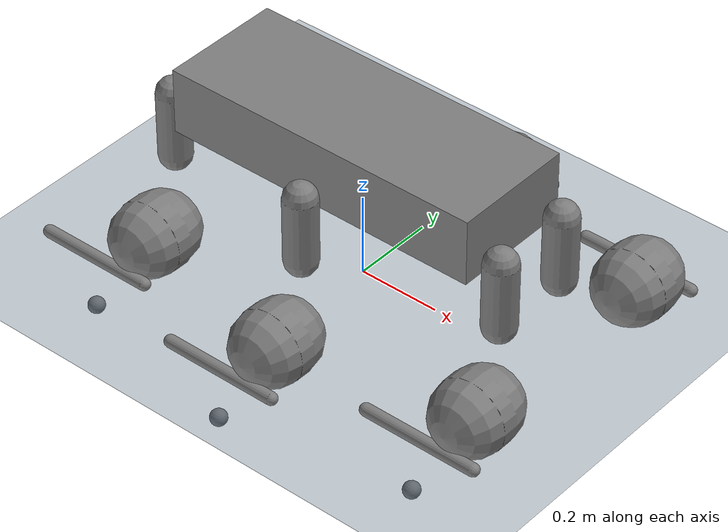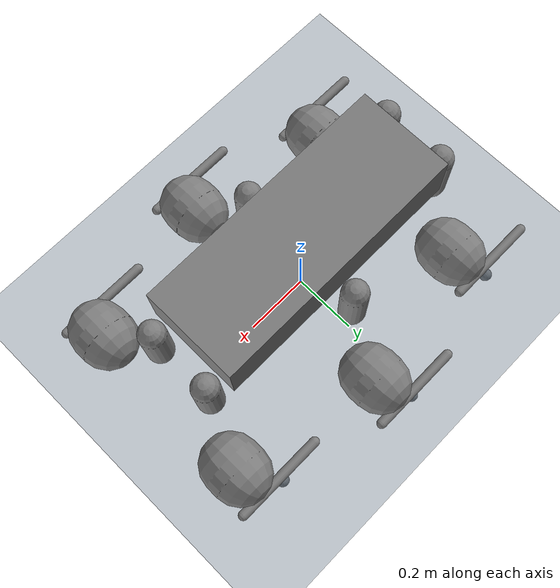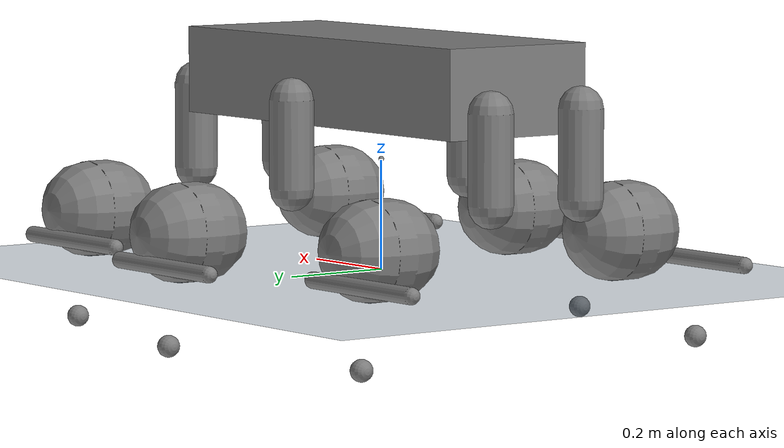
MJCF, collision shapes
<mujoco model="el4090 newhex18dof scene">
  <include file="newhex18dof.xml" />
  <statistic center="0 0 0.15" extent="1.2" />
  <visual>
    <headlight diffuse="0.6 0.6 0.6" ambient="0.3 0.3 0.3" specular="0 0 0" />
    <rgba haze="0.15 0.25 0.35 1" />
    <global azimuth="-130" elevation="-20" />
  </visual>
  <asset>
    <texture type="skybox" builtin="gradient" rgb1="0.3 0.5 0.7" rgb2="0 0 0" width="512" height="3072" />
    <texture type="2d" name="groundplane" builtin="checker" mark="edge" rgb1="0.2 0.3 0.4" rgb2="0.1 0.2 0.3" markrgb="0.8 0.8 0.8" width="300" height="300" />
    <material name="groundplane" texture="groundplane" texuniform="true" texrepeat="5 5" reflectance="0.2" />
  </asset>
  <worldbody>
    <light pos="0 0 1.5" dir="0 0 -1" directional="true" />
    <geom name="floor" size="0 0 0.05" type="plane" material="groundplane" />
  </worldbody>
  <sensor>
    <gyro site="imu" name="gyro" />
    <velocimeter site="imu" name="local_linvel" />
    <framezaxis objtype="site" objname="imu" name="upvector" />
    <framepos objtype="site" objname="imu" name="global_position" />
    <framelinvel objtype="site" objname="imu" name="global_linvel" />
    <framepos objtype="geom" objname="RF_foot" name="RF_pos" />
    <framelinvel objtype="geom" objname="RF_foot" name="RF_vel" />
    <contact name="RF_foot_contact" geom1="floor" geom2="RF_foot" data="force" num="1" reduce="mindist" />
    <framepos objtype="geom" objname="RM_foot" name="RM_pos" />
    <framelinvel objtype="geom" objname="RM_foot" name="RM_vel" />
    <contact name="RM_foot_contact" geom1="floor" geom2="RM_foot" data="force" num="1" reduce="mindist" />
    <framepos objtype="geom" objname="RB_foot" name="RB_pos" />
    <framelinvel objtype="geom" objname="RB_foot" name="RB_vel" />
    <contact name="RB_foot_contact" geom1="floor" geom2="RB_foot" data="force" num="1" reduce="mindist" />
    <framepos objtype="geom" objname="LF_foot" name="LF_pos" />
    <framelinvel objtype="geom" objname="LF_foot" name="LF_vel" />
    <contact name="LF_foot_contact" geom1="floor" geom2="LF_foot" data="force" num="1" reduce="mindist" />
    <framepos objtype="geom" objname="LM_foot" name="LM_pos" />
    <framelinvel objtype="geom" objname="LM_foot" name="LM_vel" />
    <contact name="LM_foot_contact" geom1="floor" geom2="LM_foot" data="force" num="1" reduce="mindist" />
    <framepos objtype="geom" objname="LB_foot" name="LB_pos" />
    <framelinvel objtype="geom" objname="LB_foot" name="LB_vel" />
    <contact name="LB_foot_contact" geom1="floor" geom2="LB_foot" data="force" num="1" reduce="mindist" />
    <contact name="undesired_BASE_0_contact" geom1="floor" geom2="undesired_BASE_0" data="found" num="1" reduce="mindist" />
    <contact name="undesired_RF_hip_0_contact" geom1="floor" geom2="undesired_RF_hip_0" data="found" num="1" reduce="mindist" />
    <contact name="undesired_RF_thigh_0_contact" geom1="floor" geom2="undesired_RF_thigh_0" data="found" num="1" reduce="mindist" />
    <contact name="undesired_RF_shank_0_contact" geom1="floor" geom2="undesired_RF_shank_0" data="found" num="1" reduce="mindist" />
    <contact name="undesired_RM_hip_0_contact" geom1="floor" geom2="undesired_RM_hip_0" data="found" num="1" reduce="mindist" />
    <contact name="undesired_RM_thigh_0_contact" geom1="floor" geom2="undesired_RM_thigh_0" data="found" num="1" reduce="mindist" />
    <contact name="undesired_RM_shank_0_contact" geom1="floor" geom2="undesired_RM_shank_0" data="found" num="1" reduce="mindist" />
    <contact name="undesired_RB_hip_0_contact" geom1="floor" geom2="undesired_RB_hip_0" data="found" num="1" reduce="mindist" />
    <contact name="undesired_RB_thigh_0_contact" geom1="floor" geom2="undesired_RB_thigh_0" data="found" num="1" reduce="mindist" />
    <contact name="undesired_RB_shank_0_contact" geom1="floor" geom2="undesired_RB_shank_0" data="found" num="1" reduce="mindist" />
    <contact name="undesired_LF_hip_0_contact" geom1="floor" geom2="undesired_LF_hip_0" data="found" num="1" reduce="mindist" />
    <contact name="undesired_LF_thigh_0_contact" geom1="floor" geom2="undesired_LF_thigh_0" data="found" num="1" reduce="mindist" />
    <contact name="undesired_LF_shank_0_contact" geom1="floor" geom2="undesired_LF_shank_0" data="found" num="1" reduce="mindist" />
    <contact name="undesired_LM_hip_0_contact" geom1="floor" geom2="undesired_LM_hip_0" data="found" num="1" reduce="mindist" />
    <contact name="undesired_LM_thigh_0_contact" geom1="floor" geom2="undesired_LM_thigh_0" data="found" num="1" reduce="mindist" />
    <contact name="undesired_LM_shank_0_contact" geom1="floor" geom2="undesired_LM_shank_0" data="found" num="1" reduce="mindist" />
    <contact name="undesired_LB_hip_0_contact" geom1="floor" geom2="undesired_LB_hip_0" data="found" num="1" reduce="mindist" />
    <contact name="undesired_LB_thigh_0_contact" geom1="floor" geom2="undesired_LB_thigh_0" data="found" num="1" reduce="mindist" />
    <contact name="undesired_LB_shank_0_contact" geom1="floor" geom2="undesired_LB_shank_0" data="found" num="1" reduce="mindist" />
  </sensor>
  <keyframe>
    <key name="home" qpos="0 0 0.35 1 0 0 0 0 0 0 0 0 0 0 0 0 0 0 0 0 0 0 0 0 0" ctrl="0 0 0 0 0 0 0 0 0 0 0 0 0 0 0 0 0 0" />
  </keyframe>
</mujoco>

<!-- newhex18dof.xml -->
<mujoco model="el4090_newhex18dof">
  <compiler angle="radian" meshdir="meshes" autolimits="true" />
  <option cone="elliptic" impratio="100" />
  <default>
    <default class="el_4090">
      <geom friction="0.6" margin="0.001" condim="1" />
      <joint damping="0.5" armature="0.05" frictionloss="0.5" />
      <position ctrlrange="-80 80" />
      <default class="hip_aa">
        <joint range="-3 3" />
      </default>
      <default class="hip_fe">
        <joint range="-3 3" />
      </default>
      <default class="knee">
        <joint range="-3 3" />
      </default>
      <default class="visual">
        <geom type="mesh" contype="0" conaffinity="0" group="2" />
      </default>
      <default class="collision">
        <geom group="3" />
        <default class="foot">
          <geom size="0.02" priority="1" condim="6" friction="0.6 0.02 0.01" />
        </default>
      </default>
    </default>
  </default>
  <asset>
    <material name="metal" rgba=".9 .95 .95 1" />
    <material name="gray" rgba="0.752941 0.752941 0.752941 1" />
    <material name="blue" rgba="0.501960 0.501960 0.752941 1" />
    <mesh file="BASE.STL" />
    <mesh file="RF_HIP.STL" />
    <mesh file="RF_THIGH.STL" />
    <mesh file="RF_SHANK.STL" />
    <mesh file="RF_FOOT.STL" />
    <mesh file="RM_HIP.STL" />
    <mesh file="RM_THIGH.STL" />
    <mesh file="RM_SHANK.STL" />
    <mesh file="RM_FOOT.STL" />
    <mesh file="RB_HIP.STL" />
    <mesh file="RB_THIGH.STL" />
    <mesh file="RB_SHANK.STL" />
    <mesh file="RB_FOOT.STL" />
    <mesh file="LF_HIP.STL" />
    <mesh file="LF_THIGH.STL" />
    <mesh file="LF_SHANK.STL" />
    <mesh file="LF_FOOT.STL" />
    <mesh file="LM_HIP.STL" />
    <mesh file="LM_THIGH.STL" />
    <mesh file="LM_SHANK.STL" />
    <mesh file="LM_FOOT.STL" />
    <mesh file="LB_HIP.STL" />
    <mesh file="LB_THIGH.STL" />
    <mesh file="LB_SHANK.STL" />
    <mesh file="LB_FOOT.STL" />
  </asset>
  <worldbody>
    <body name="BASE" pos="0 0 0.35" childclass="el_4090">
      <inertial pos="8.76981e-07 0.000115496 -0.147278" mass="7.44160" fullinertia="0.102252 0.550673 0.642667 1.38784e-07 3.46680e-08 8.47302e-06" />
      <freejoint />
      <geom mesh="BASE" material="metal" class="visual" />
      <geom size="0.4 0.15 0.08" type="box" class="collision" name="undesired_BASE_0" />
      <site name="imu" pos="0 0 -0.147278" />
      <body name="RF_hip" pos="0.45 -0.1 -0.1105" quat="0 0.707107 0.707107 0">
        <inertial pos="-0.0284101 -0.00133832 0.104823" mass="1.11610" fullinertia="0.00135962 0.00210959 0.00166449 -3.05912e-05 0.000222421 1.38916e-05" />
        <joint name="RF_HAA" axis="0 0 1" class="hip_aa" />
        <geom mesh="RF_HIP" material="gray" class="visual" />
        <geom size="0.04 0.08" type="capsule" class="collision" name="undesired_RF_hip_0" />
        <body name="RF_thigh" pos="-0.09 0.0795 0.154" quat="0.707107 -0.707107 0 0">
          <inertial pos="-0.0284794 0.0124923 -0.0809892" mass="1.00124" fullinertia="0.00104777 0.00212934 0.00281212 0.000929232 2.63860e-05 -1.15742e-05" />
          <joint name="RF_HFE" axis="0 0 1" class="hip_fe" />
          <geom mesh="RF_THIGH" material="gray" class="visual" />
          <geom size="0.09 0.02" pos="-0.08 0 0" quat="0.707107 0 0.707107 0" type="capsule" class="collision" name="undesired_RF_thigh_0" />
          <body name="RF_shank" pos="-0.1782 0.090798 -0.0685">
            <inertial pos="-0.00122266 -0.107332 -0.0108828" mass="0.577674" fullinertia="0.00449636 6.70983e-05 0.00452067 -5.31534e-05 1.14279e-08 2.41776e-06" />
            <joint name="RF_KFE" axis="0 0 1" class="knee" />
            <geom mesh="RF_SHANK" material="gray" class="visual" />
            <geom size="0.015 0.14" pos="0 -0.14 0" quat="1 0 0 0" type="capsule" class="collision" name="undesired_RF_shank_0" />
            <body name="RF_foot" pos="-0.00818264 -0.299167 -0.0111074">
              <inertial pos="0.00315049 0.0187639 0.000250412" mass="0.0652350" fullinertia="1.21480e-05 1.32090e-05 1.43073e-05 -6.01498e-08 2.79522e-08 -9.55459e-08" />
              <geom mesh="RF_FOOT" material="blue" class="visual" />
              <geom name="RF_foot" class="foot" pos="0 0.02 0" type="sphere" />
            </body>
          </body>
        </body>
      </body>
      <body name="RM_hip" pos="0 -0.2 -0.1105" quat="0 0.707107 0.707107 0">
        <inertial pos="-0.02841 -0.0013382 0.10482" mass="1.1161" fullinertia="0.0013596 0.0021096 0.0016645 -3.06e-05 0.00022242 1.3892e-05" />
        <joint name="RM_HAA" axis="0 0 1" class="hip_aa" />
        <geom mesh="RM_HIP" material="gray" class="visual" />
        <geom size="0.04 0.08" type="capsule" class="collision" name="undesired_RM_hip_0" />
        <body name="RM_thigh" pos="-0.09 0.0795 0.154" quat="0.707107 -0.707107 0 0">
          <inertial pos="-0.028479 0.012492 -0.080989" mass="1.0012" fullinertia="0.0010478 0.0021293 0.0028121 0.00092923 2.6386e-05 -1.1574e-05" />
          <joint name="RM_HFE" axis="0 0 1" class="hip_fe" />
          <geom mesh="RM_THIGH" material="gray" class="visual" />
          <geom size="0.09 0.02" pos="-0.08 0 0" quat="0.707107 0 0.707107 0" type="capsule" class="collision" name="undesired_RM_thigh_0" />
          <body name="RM_shank" pos="-0.1782 0.090798 -0.0685">
            <inertial pos="-0.001255 -0.10733 -0.010883" mass="0.57767" fullinertia="0.0044965 6.7005e-05 0.0045207 -4.9108e-05 -4.438e-08 2.4174e-06" />
            <joint name="RM_KFE" axis="0 0 1" class="knee" />
            <geom mesh="RM_SHANK" material="gray" class="visual" />
            <geom size="0.015 0.14" pos="0 -0.14 0" quat="1 0 0 0" type="capsule" class="collision" name="undesired_RM_shank_0" />
            <body name="RM_foot" pos="0.0012754 -0.29928 -0.011107">
              <inertial pos="0.0027166 0.018832 0.00025041" mass="0.065235" fullinertia="1.2151e-05 1.3206e-05 1.4307e-05 -8.4562e-08 3.0162e-08 -9.4852e-08" />
              <geom mesh="RM_FOOT" material="blue" class="visual" />
              <geom name="RM_foot" class="foot" pos="0 0.02 0" type="sphere" />
            </body>
          </body>
        </body>
      </body>
      <body name="RB_hip" pos="-0.45 -0.1 -0.1108" quat="0 0.707107 0.707107 0">
        <inertial pos="-0.02841 0.0013389 0.10482" mass="1.1161" fullinertia="0.0013596 0.0021096 0.0016645 3.06e-05 0.00022242 1.3892e-05" />
        <joint name="RB_HAA" axis="0 0 1" class="hip_aa" />
        <geom mesh="RB_HIP" material="gray" class="visual" />
        <geom size="0.04 0.08" type="capsule" class="collision" name="undesired_RB_hip_0" />
        <body name="RB_thigh" pos="-0.09 0.0945 0.1537" quat="0.707107 -0.707107 0 0">
          <inertial pos="-0.028479 0.012492 -0.093011" mass="1.0012" fullinertia="0.0010478 0.0021293 0.0028121 0.00092923 -2.6386e-05 1.1574e-05" />
          <joint name="RB_HFE" axis="0 0 1" class="hip_fe" />
          <geom mesh="RB_THIGH" material="gray" class="visual" />
          <geom size="0.09 0.02" pos="-0.08 0 0" quat="0.707107 0 0.707107 0" type="capsule" class="collision" name="undesired_RB_thigh_0" />
          <body name="RB_shank" pos="-0.1782 0.090798 -0.0835">
            <inertial pos="-0.0012227 -0.10733 -0.011117" mass="0.57767" fullinertia="0.0044964 6.7098e-05 0.0045207 -5.3153e-05 1.1428e-08 2.4178e-06" />
            <joint name="RB_KFE" axis="0 0 1" class="knee" />
            <geom mesh="RB_SHANK" material="gray" class="visual" />
            <geom size="0.015 0.14" pos="0 -0.14 0" quat="1 0 0 0" type="capsule" class="collision" name="undesired_RB_shank_0" />
            <body name="RB_foot" pos="0.00127539 -0.29928 -0.010893">
              <inertial pos="-0.0031505 0.018764 -0.00025041" mass="0.065235" fullinertia="1.2148e-05 1.3209e-05 1.4307e-05 6.015e-08 2.7952e-08 9.5546e-08" />
              <geom mesh="RB_FOOT" material="blue" class="visual" />
              <geom name="RB_foot" class="foot" pos="0 0.02 0" type="sphere" />
            </body>
          </body>
        </body>
      </body>
      <body name="LF_hip" pos="0.45 0.099997 -0.1105" quat="0.707107 0 0 -0.707107">
        <inertial pos="-0.02841 -0.0013383 -0.10482" mass="1.1161" fullinertia="0.0013596 0.0021096 0.0016645 -3.0608e-05 -0.00022242 -1.3892e-05" />
        <joint name="LF_HAA" axis="0 0 1" class="hip_aa" />
        <geom mesh="LF_HIP" material="gray" class="visual" />
        <geom size="0.04 0.08" type="capsule" class="collision" name="undesired_LF_hip_0" />
        <body name="LF_thigh" pos="-0.09 0.0795 -0.154" quat="0.707107 0.707107 0 0">
          <inertial pos="-0.028479 0.012492 0.080989" mass="1.0012" fullinertia="0.0010478 0.0021293 0.0028121 0.00092923 -2.6386e-05 1.1574e-05" />
          <joint name="LF_HFE" axis="0 0 1" class="hip_fe" />
          <geom mesh="LF_THIGH" material="gray" class="visual" />
          <geom size="0.09 0.02" pos="-0.08 0 0" quat="0.707107 0 0.707107 0" type="capsule" class="collision" name="undesired_LF_thigh_0" />
          <body name="LF_shank" pos="-0.1782 0.090798 0.0685">
            <inertial pos="-0.001255 -0.10733 0.010883" mass="0.57767" fullinertia="0.0044965 6.7005e-05 0.0045207 -4.9108e-05 -4.438e-08 -2.4174e-06" />
            <joint name="LF_KFE" axis="0 0 1" class="knee" />
            <geom mesh="LF_SHANK" material="gray" class="visual" />
            <geom size="0.015 0.14" pos="0 -0.14 0" quat="1 0 0 0" type="capsule" class="collision" name="undesired_LF_shank_0" />
            <body name="LF_foot" pos="0.00127539 -0.29928 0.011107" quat="0 0 1 0">
              <inertial pos="0.00271657 0.0188316 0.000250423" mass="0.0652350" fullinertia="1.21513e-05 1.32056e-05 1.43073e-05 -8.45643e-08 3.01643e-08 -9.48605e-08" />
              <geom mesh="LF_FOOT" material="blue" class="visual" />
              <geom name="LF_foot" class="foot" pos="0 0.02 0" type="sphere" />
            </body>
          </body>
        </body>
      </body>
      <body name="LM_hip" pos="0 0.2 -0.1105" quat="0.707107 0 0 -0.707107">
        <inertial pos="-0.02841 -0.0013383 -0.10482" mass="1.1161" fullinertia="0.0013596 0.0021096 0.0016645 -3.0609e-05 -0.00022242 -1.3892e-05" />
        <joint name="LM_HAA" axis="0 0 1" class="hip_aa" />
        <geom mesh="LM_HIP" material="gray" class="visual" />
        <geom size="0.04 0.08" type="capsule" class="collision" name="undesired_LM_hip_0" />
        <body name="LM_thigh" pos="-0.09 0.0795 -0.154" quat="0.707107 0.707107 0 0">
          <inertial pos="-0.028479 0.012492 0.080989" mass="1.0012" fullinertia="0.0010478 0.0021293 0.0028121 0.00092923 -2.6386e-05 1.1574e-05" />
          <joint name="LM_HFE" axis="0 0 1" class="hip_fe" />
          <geom mesh="LM_THIGH" material="gray" class="visual" />
          <geom size="0.09 0.02" pos="-0.08 0 0" quat="0.707107 0 0.707107 0" type="capsule" class="collision" name="undesired_LM_thigh_0" />
          <body name="LM_shank" pos="-0.1782 0.090798 0.0685">
            <inertial pos="-0.001255 -0.10733 0.010883" mass="0.57767" fullinertia="0.0044965 6.7005e-05 0.0045207 -4.9108e-05 -4.438e-08 -2.4174e-06" />
            <joint name="LM_KFE" axis="0 0 1" class="knee" />
            <geom mesh="LM_SHANK" material="gray" class="visual" />
            <geom size="0.015 0.14" pos="0 -0.14 0" quat="1 0 0 0" type="capsule" class="collision" name="undesired_LM_shank_0" />
            <body name="LM_foot" pos="0.0012754 -0.29928 0.011107" quat="0 0 1 0">
              <inertial pos="0.0027166 0.018832 0.00025041" mass="0.065235" fullinertia="1.2151e-05 1.3206e-05 1.4307e-05 -8.4562e-08 3.0162e-08 -9.4852e-08" />
              <geom mesh="LM_FOOT" material="blue" class="visual" />
              <geom name="LM_foot" class="foot" pos="0 0.02 0" type="sphere" />
            </body>
          </body>
        </body>
      </body>
      <body name="LB_hip" pos="-0.45 0.099997 -0.1105" quat="0.707107 0 0 -0.707107">
        <inertial pos="-0.02841 0.0013389 -0.10482" mass="1.1161" fullinertia="0.0013596 0.0021096 0.0016645 3.06e-05 -0.00022242 1.3892e-05" />
        <joint name="LB_HAA" axis="0 0 1" class="hip_aa" />
        <geom mesh="LB_HIP" material="gray" class="visual" />
        <geom size="0.04 0.08" type="capsule" class="collision" name="undesired_LB_hip_0" />
        <body name="LB_thigh" pos="-0.09 0.0945 -0.154" quat="0.707107 0.707107 0 0">
          <inertial pos="-0.028479 0.012492 0.093011" mass="1.0012" fullinertia="0.0010478 0.0021293 0.0028121 0.00092923 2.6386e-05 -1.1574e-05" />
          <joint name="LB_HFE" axis="0 0 1" class="hip_fe" />
          <geom mesh="LB_THIGH" material="gray" class="visual" />
          <geom size="0.09 0.02" pos="-0.08 0 0" quat="0.707107 0 0.707107 0" type="capsule" class="collision" name="undesired_LB_thigh_0" />
          <body name="LB_shank" pos="-0.1782 0.090798 0.0835">
            <inertial pos="-0.0012227 -0.10733 0.011117" mass="0.57767" fullinertia="0.0044964 6.7098e-05 0.0045207 -5.3153e-05 1.1428e-08 2.4178e-06" />
            <joint name="LB_KFE" axis="0 0 1" class="knee" />
            <geom mesh="LB_SHANK" material="gray" class="visual" />
            <geom size="0.015 0.14" pos="0 -0.14 0" quat="1 0 0 0" type="capsule" class="collision" name="undesired_LB_shank_0" />
            <body name="LB_foot" pos="-0.0081826 -0.29917 0.010893" quat="0 0 1 0">
              <inertial pos="-0.0031505 0.018764 -0.00025041" mass="0.065235" fullinertia="1.2148e-05 1.3209e-05 1.4307e-05 6.015e-08 2.7952e-08 9.5546e-08" />
              <geom mesh="LB_FOOT" material="blue" class="visual" />
              <geom name="LB_foot" class="foot" pos="0 0.02 0" type="sphere" />
            </body>
          </body>
        </body>
      </body>
    </body>
  </worldbody>
  <actuator>
    <position class="hip_aa" name="RF_HAA" joint="RF_HAA" />
    <position class="hip_fe" name="RF_HFE" joint="RF_HFE" />
    <position class="knee" name="RF_KFE" joint="RF_KFE" />
    <position class="hip_aa" name="RM_HAA" joint="RM_HAA" />
    <position class="hip_fe" name="RM_HFE" joint="RM_HFE" />
    <position class="knee" name="RM_KFE" joint="RM_KFE" />
    <position class="hip_aa" name="RB_HAA" joint="RB_HAA" />
    <position class="hip_fe" name="RB_HFE" joint="RB_HFE" />
    <position class="knee" name="RB_KFE" joint="RB_KFE" />
    <position class="hip_aa" name="LF_HAA" joint="LF_HAA" />
    <position class="hip_fe" name="LF_HFE" joint="LF_HFE" />
    <position class="knee" name="LF_KFE" joint="LF_KFE" />
    <position class="hip_aa" name="LM_HAA" joint="LM_HAA" />
    <position class="hip_fe" name="LM_HFE" joint="LM_HFE" />
    <position class="knee" name="LM_KFE" joint="LM_KFE" />
    <position class="hip_aa" name="LB_HAA" joint="LB_HAA" />
    <position class="hip_fe" name="LB_HFE" joint="LB_HFE" />
    <position class="knee" name="LB_KFE" joint="LB_KFE" />
  </actuator>
  <sensor>
    <jointpos name="RF_HAA_pos" joint="RF_HAA" />
    <jointpos name="RF_HFE_pos" joint="RF_HFE" />
    <jointpos name="RF_KFE_pos" joint="RF_KFE" />
    <jointpos name="RM_HAA_pos" joint="RM_HAA" />
    <jointpos name="RM_HFE_pos" joint="RM_HFE" />
    <jointpos name="RM_KFE_pos" joint="RM_KFE" />
    <jointpos name="RB_HAA_pos" joint="RB_HAA" />
    <jointpos name="RB_HFE_pos" joint="RB_HFE" />
    <jointpos name="RB_KFE_pos" joint="RB_KFE" />
    <jointpos name="LF_HAA_pos" joint="LF_HAA" />
    <jointpos name="LF_HFE_pos" joint="LF_HFE" />
    <jointpos name="LF_KFE_pos" joint="LF_KFE" />
    <jointpos name="LM_HAA_pos" joint="LM_HAA" />
    <jointpos name="LM_HFE_pos" joint="LM_HFE" />
    <jointpos name="LM_KFE_pos" joint="LM_KFE" />
    <jointpos name="LB_HAA_pos" joint="LB_HAA" />
    <jointpos name="LB_HFE_pos" joint="LB_HFE" />
    <jointpos name="LB_KFE_pos" joint="LB_KFE" />
    <jointvel name="RF_HAA_vel" joint="RF_HAA" />
    <jointvel name="RF_HFE_vel" joint="RF_HFE" />
    <jointvel name="RF_KFE_vel" joint="RF_KFE" />
    <jointvel name="RM_HAA_vel" joint="RM_HAA" />
    <jointvel name="RM_HFE_vel" joint="RM_HFE" />
    <jointvel name="RM_KFE_vel" joint="RM_KFE" />
    <jointvel name="RB_HAA_vel" joint="RB_HAA" />
    <jointvel name="RB_HFE_vel" joint="RB_HFE" />
    <jointvel name="RB_KFE_vel" joint="RB_KFE" />
    <jointvel name="LF_HAA_vel" joint="LF_HAA" />
    <jointvel name="LF_HFE_vel" joint="LF_HFE" />
    <jointvel name="LF_KFE_vel" joint="LF_KFE" />
    <jointvel name="LM_HAA_vel" joint="LM_HAA" />
    <jointvel name="LM_HFE_vel" joint="LM_HFE" />
    <jointvel name="LM_KFE_vel" joint="LM_KFE" />
    <jointvel name="LB_HAA_vel" joint="LB_HAA" />
    <jointvel name="LB_HFE_vel" joint="LB_HFE" />
    <jointvel name="LB_KFE_vel" joint="LB_KFE" />
    <jointactuatorfrc name="RF_HAA_torque" joint="RF_HAA" noise="0.01" />
    <jointactuatorfrc name="RF_HFE_torque" joint="RF_HFE" noise="0.01" />
    <jointactuatorfrc name="RF_KFE_torque" joint="RF_KFE" noise="0.01" />
    <jointactuatorfrc name="RM_HAA_torque" joint="RM_HAA" noise="0.01" />
    <jointactuatorfrc name="RM_HFE_torque" joint="RM_HFE" noise="0.01" />
    <jointactuatorfrc name="RM_KFE_torque" joint="RM_KFE" noise="0.01" />
    <jointactuatorfrc name="RB_HAA_torque" joint="RB_HAA" noise="0.01" />
    <jointactuatorfrc name="RB_HFE_torque" joint="RB_HFE" noise="0.01" />
    <jointactuatorfrc name="RB_KFE_torque" joint="RB_KFE" noise="0.01" />
    <jointactuatorfrc name="LF_HAA_torque" joint="LF_HAA" noise="0.01" />
    <jointactuatorfrc name="LF_HFE_torque" joint="LF_HFE" noise="0.01" />
    <jointactuatorfrc name="LF_KFE_torque" joint="LF_KFE" noise="0.01" />
    <jointactuatorfrc name="LM_HAA_torque" joint="LM_HAA" noise="0.01" />
    <jointactuatorfrc name="LM_HFE_torque" joint="LM_HFE" noise="0.01" />
    <jointactuatorfrc name="LM_KFE_torque" joint="LM_KFE" noise="0.01" />
    <jointactuatorfrc name="LB_HAA_torque" joint="LB_HAA" noise="0.01" />
    <jointactuatorfrc name="LB_HFE_torque" joint="LB_HFE" noise="0.01" />
    <jointactuatorfrc name="LB_KFE_torque" joint="LB_KFE" noise="0.01" />
    <framequat name="imu_quat" objtype="site" objname="imu" />
    <gyro name="imu_gyro" site="imu" />
    <accelerometer name="imu_acc" site="imu" />
    <framepos name="frame_pos" objtype="site" objname="imu" />
    <framelinvel name="frame_vel" objtype="site" objname="imu" />
  </sensor>
</mujoco>
